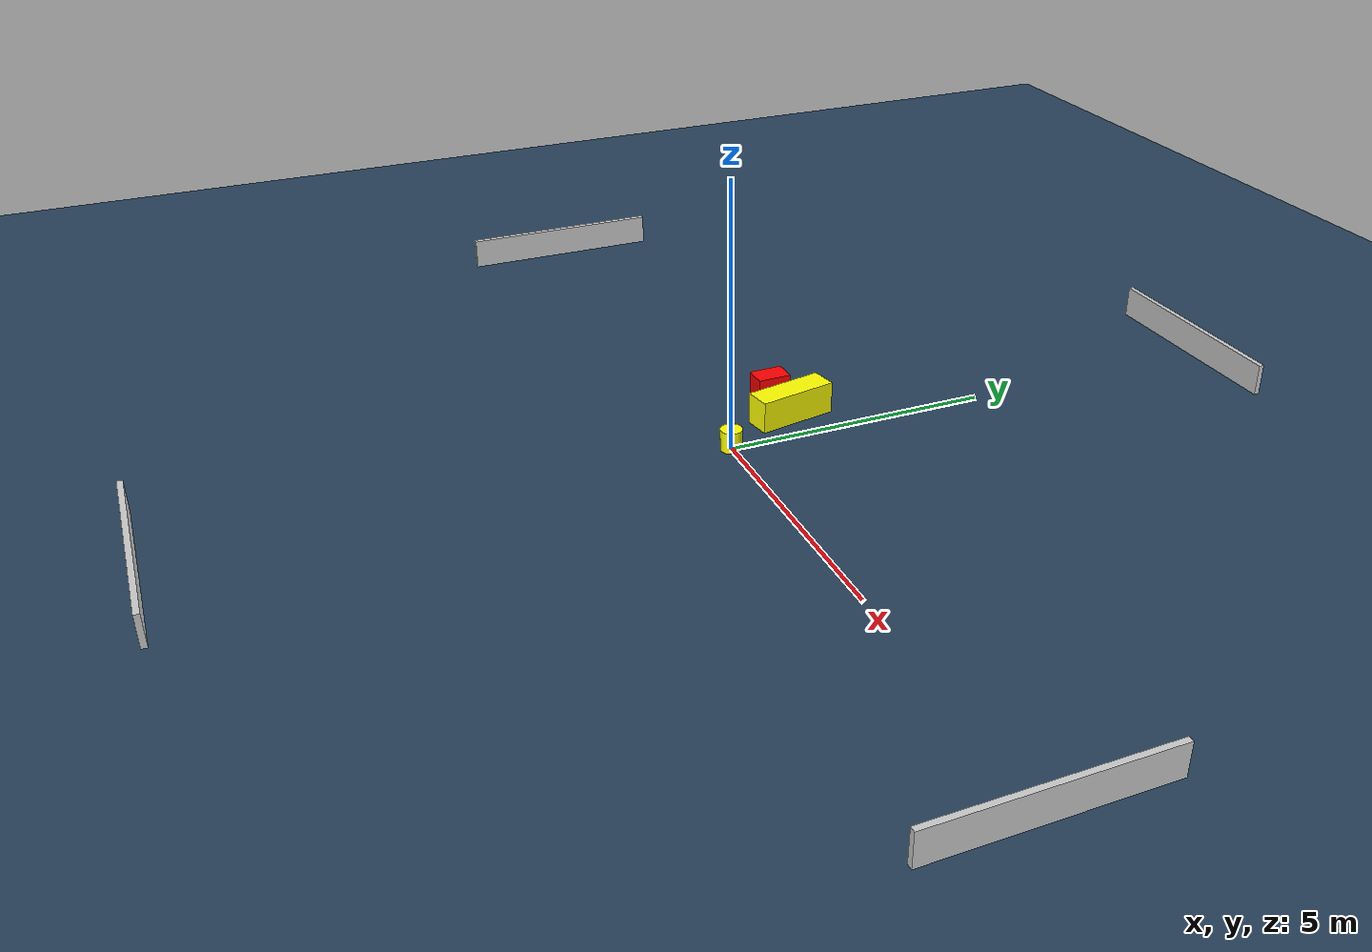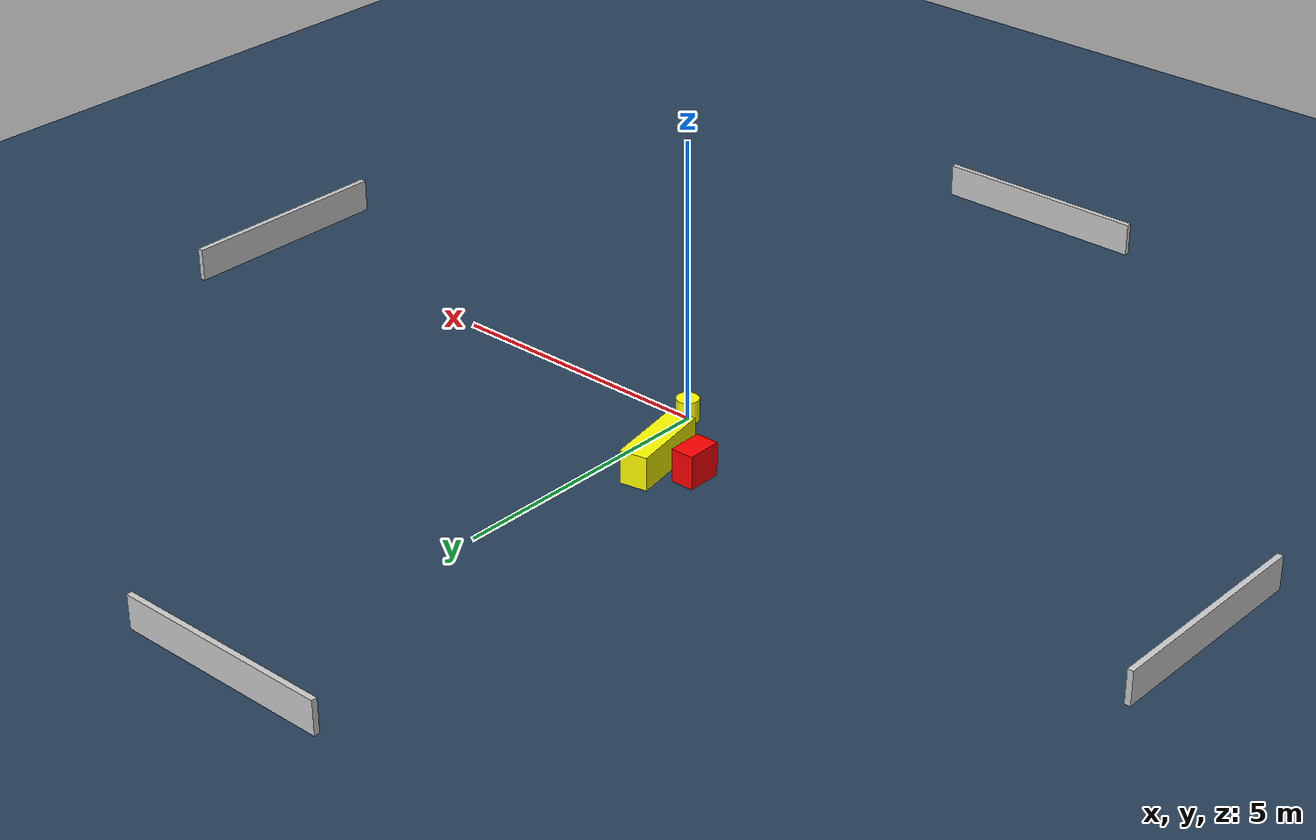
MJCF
<?xml version="1.0" ?>
<mujoco model="generated_environment">
  <option timestep="0.01" integrator="RK4" cone="elliptic"/>
  <default>
    <geom density="1"/>
  </default>
  <asset>
    <texture builtin="gradient" height="3072" name="skybox" rgb1="0.3 0.5 0.7" rgb2="0 0 0" type="skybox" width="512"/>
    <texture builtin="checker" height="300" name="groundplane" rgb1="0.2 0.3 0.4" rgb2="0.1 0.2 0.3" type="2d" width="300"/>
    <material name="groundplane" reflectance="0.2" texrepeat="5 5" texture="groundplane"/>
  </asset>
  <worldbody>
    <light dir="0 0 -1" directional="true" pos="0 0 1.5"/>
    <geom condim="3" friction="0.5 0.005 0.001" material="groundplane" name="floor" pos="0 0 0" size="0 0 0.05" type="plane"/>
    <body name="walls">
      <geom name="wall_1" condim="4" pos="-10.0 0.0 0.3" rgba="0.800000011920929 0.800000011920929 0.800000011920929 1.0" size="0.05 2.0 0.3" type="box"/>
      <geom name="wall_2" condim="4" pos="10.0 0.0 0.3" rgba="0.800000011920929 0.800000011920929 0.800000011920929 1.0" size="0.05 2.0 0.3" type="box"/>
      <geom name="wall_3" condim="4" pos="0.0 -10.0 0.3" rgba="0.800000011920929 0.800000011920929 0.800000011920929 1.0" size="2.0 0.05 0.3" type="box"/>
      <geom name="wall_4" condim="4" pos="0.0 10.0 0.3" rgba="0.800000011920929 0.800000011920929 0.800000011920929 1.0" size="2.0 0.05 0.3" type="box"/>
    </body>
    <body name="robot">
      <joint name="joint_x" type="slide" pos="0 0 0" axis="1 0 0"/>
      <joint name="joint_y" type="slide" pos="0 0 0" axis="0 1 0"/>
      <geom name="robot" type="cylinder" pos="0.0 0.0 0.2" size="0.2 0.2 0.0" mass="5.0" friction="1.0 0.005 0.0001" condim="4" rgba="1.0 1.0 0.0 1.0"/>
    </body>
    <body name="obstacle_1_movable">
      <geom name="obstacle_1_movable" condim="4" pos="-0.662356189688951 1.4704341188793981 0.3" euler="0 0 10.647366456486523" friction="0.0 0.005 0.001" rgba="1.0 1.0 0.0 1.0" size="0.24827906300010855 0.7533400008980917 0.3" type="box" mass="0.1"/>
      <joint type="free"/>
    </body>
    <body name="obstacle_2_static">
      <geom name="obstacle_2_static" condim="4" pos="-1.345066713740029 1.3608979468746314 0.3" euler="0 0 270.77484915763114" friction="0.0 0.005 0.001" rgba="1.0 0.0 0.0 1.0" size="0.3117558746234901 0.206989982172895 0.3" type="box"/>
    </body>
  </worldbody>
  <actuator>
    <motor name="actuator_x" joint="joint_x" gear="1" ctrlrange="-1 1"/>
    <motor name="actuator_y" joint="joint_y" gear="1" ctrlrange="-1 1"/>
  </actuator>
</mujoco>
